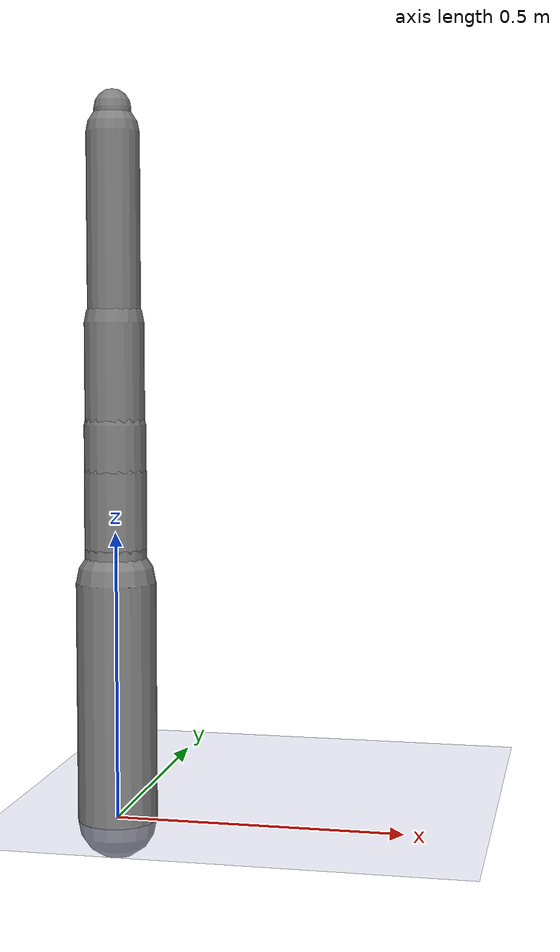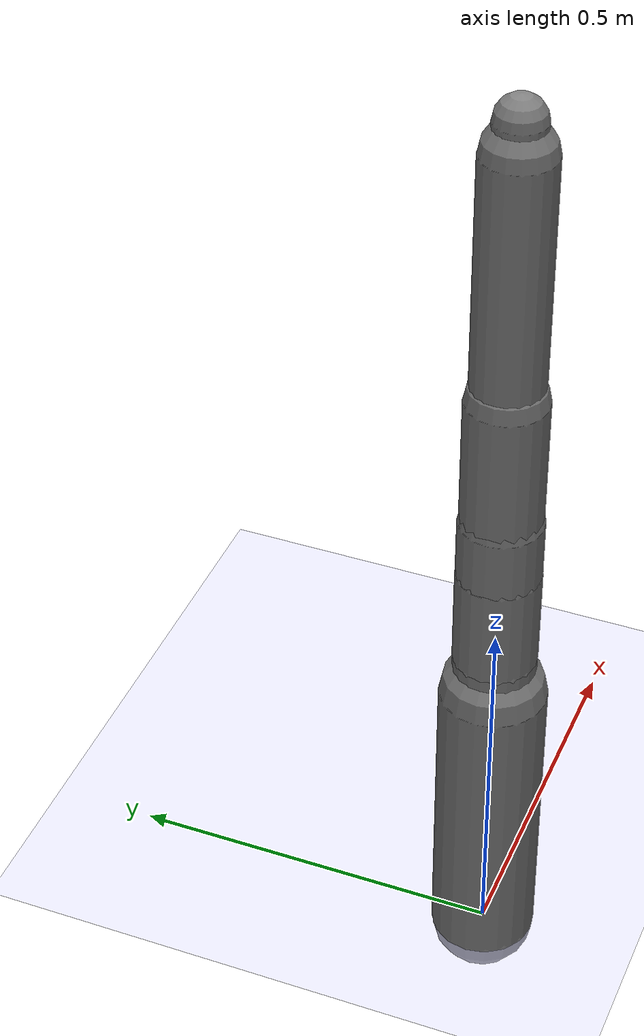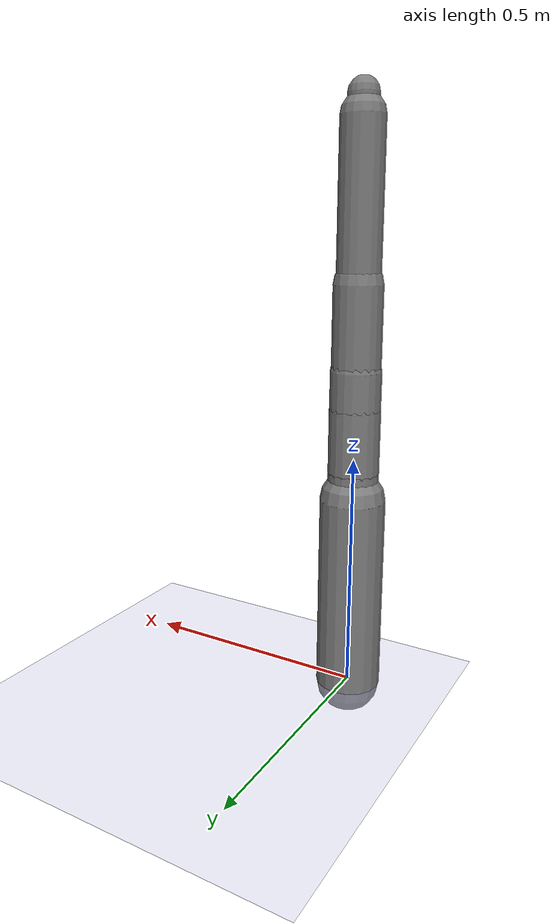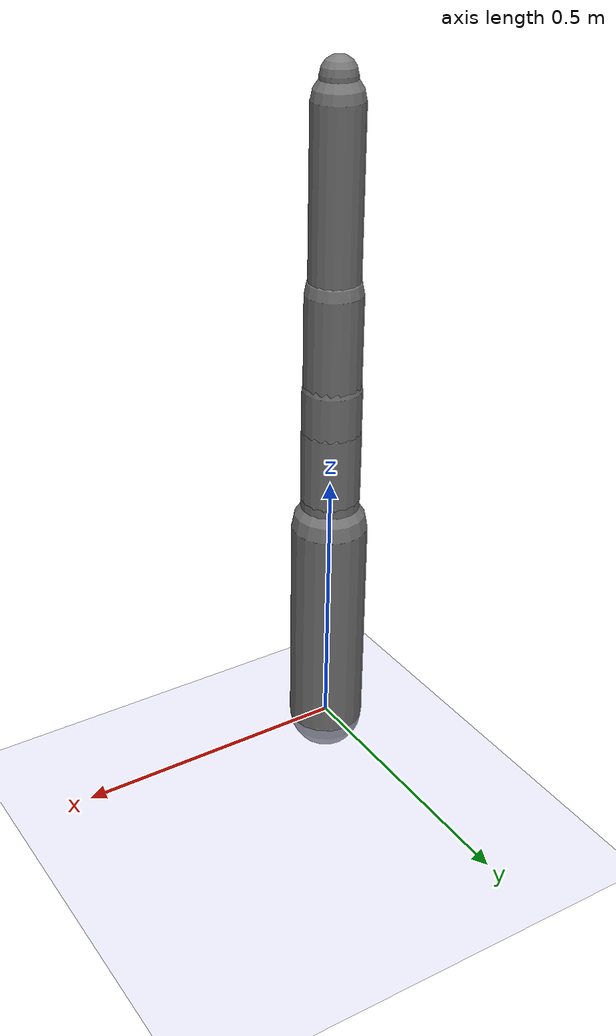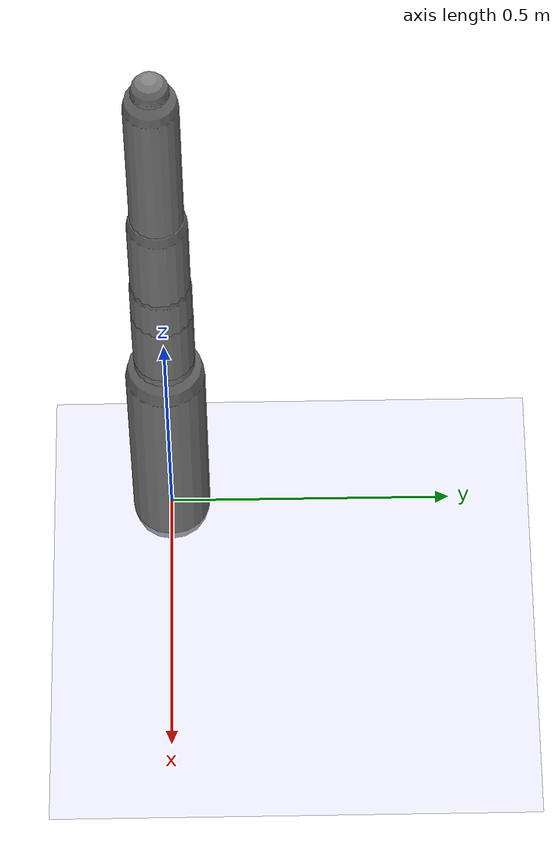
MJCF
<?xml version='1.0' encoding='UTF-8'?>
<mujoco model="robot_model">
  <worldbody>
    <light name="light" pos="0 -3 10" dir="0 0.5 -1" diffuse=".8 .8 .8" specular="0.1 0.1 0.1"/>
    <geom name="floor" type="plane" size="10.0 10.0 0.1" pos="0 0 0" rgba="0.8 0.8 1 1" contype="2" conaffinity="1"/>
    <body name="limb0" pos="0 0 0">
      <geom type="capsule" fromto="0 0 0 0 0 0.41438904951290967" size="0.06894644878281182" density="659.4763866603964" contype="1" conaffinity="2"/>
      <site type="sphere" size="0.01" name="limb0_site0" pos="0 0 0.31393972911719925"/>
      <freejoint name="limb0_root"/>
      <body name="limb1" pos="0 0 0.31393972911719925">
        <geom type="capsule" fromto="0 0 0 0 0 0.372274530228085" size="0.052960072305996767" density="1069.5549891432568" contype="1" conaffinity="2"/>
        <site type="sphere" size="0.01" name="limb1_site0" pos="0 0 0.3650181458444618"/>
        <site type="sphere" size="0.01" name="limb1_site1" pos="0 0 0.09092044368373829"/>
        <site type="sphere" size="0.01" name="limb1_site2" pos="0 0 0.16010548992968815"/>
        <body name="limb2" pos="0 0 0.3650181458444618">
          <geom type="capsule" fromto="0 0 0 0 0 0.5" size="0.045329815490319995" density="1017.2531489540214" contype="1" conaffinity="2"/>
          <site type="sphere" size="0.01" name="limb2_site0" pos="0 0 0.34785567640622883"/>
          <body name="limb3" pos="0 0 0.34785567640622883">
            <geom type="capsule" fromto="0 0 0 0 0 0.19166066799868264" size="0.0314707546179414" density="956.2416848734547" contype="1" conaffinity="2"/>
            <joint name="joint_limb2_limb3_0" type="hinge" axis="0 1 0" range="-39.54825129765963 39.54825129765963" damping="5.0"/>
          </body>
          <joint name="joint_limb1_limb2_0" type="hinge" axis="0 1 0" range="-61.56309221080819 61.56309221080819" damping="5.0"/>
        </body>
        <body name="limb4" pos="0 0 0.09092044368373829">
          <geom type="capsule" fromto="0 0 0 0 0 0.4553959547646001" size="0.05112992904407712" density="905.1932138092933" contype="1" conaffinity="2"/>
          <joint name="joint_limb1_limb4_0" type="hinge" axis="0 0 1" range="-72.8282440056993 72.8282440056993" damping="5.0"/>
        </body>
        <body name="limb5" pos="0 0 0.16010548992968815">
          <geom type="capsule" fromto="0 0 0 0 0 0.1320734913801986" size="0.05340957392047939" density="1133.4821049602715" contype="1" conaffinity="2"/>
          <joint name="joint_limb1_limb5_0" type="hinge" axis="0 1 0" range="-69.44632972357735 69.44632972357735" damping="5.0"/>
        </body>
        <joint name="joint_limb0_limb1_0" type="hinge" axis="0 1 0" range="-89.12714794406047 89.12714794406047" damping="5.0"/>
      </body>
    </body>
  </worldbody>
  <actuator>
    <position name="position_actuator_joint_limb0_limb1_0" joint="joint_limb0_limb1_0" gear="1.8694611590103172" inheritrange="1" forcerange="-20.869594355142794 20.869594355142794" forcelimited="true" kp="100.0"/>
    <position name="position_actuator_joint_limb1_limb2_0" joint="joint_limb1_limb2_0" gear="1.9635553601570486" inheritrange="1" forcerange="-18.401183504925072 18.401183504925072" forcelimited="true" kp="100.0"/>
    <position name="position_actuator_joint_limb2_limb3_0" joint="joint_limb2_limb3_0" gear="1.9577561249166682" inheritrange="1" forcerange="-3.4754816031092273 3.4754816031092273" forcelimited="true" kp="100.0"/>
    <position name="position_actuator_joint_limb1_limb4_0" joint="joint_limb1_limb4_0" gear="0.8397505935235454" inheritrange="1" forcerange="-19.46191769120985 19.46191769120985" forcelimited="true" kp="100.0"/>
    <position name="position_actuator_joint_limb1_limb5_0" joint="joint_limb1_limb5_0" gear="0.9276080822771746" inheritrange="1" forcerange="-10.324779618312816 10.324779618312816" forcelimited="true" kp="100.0"/>
  </actuator>
</mujoco>
